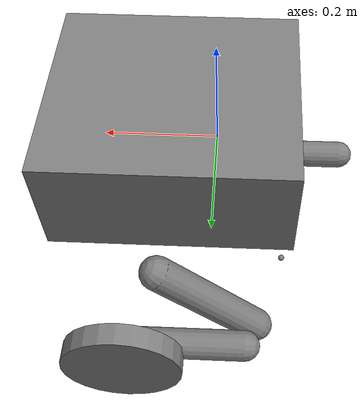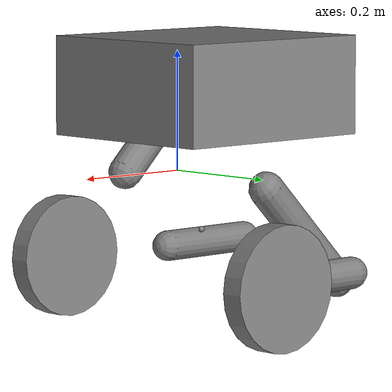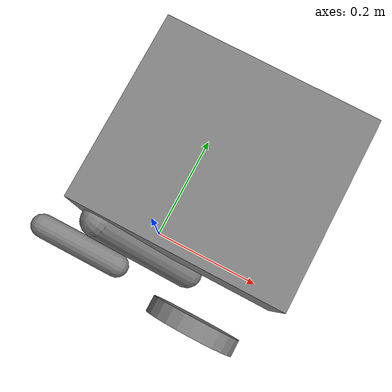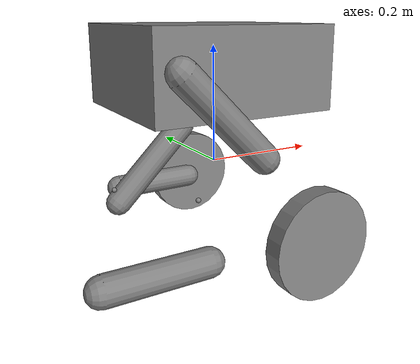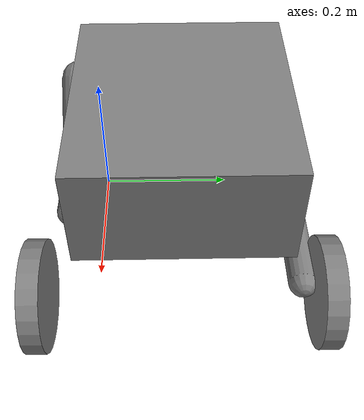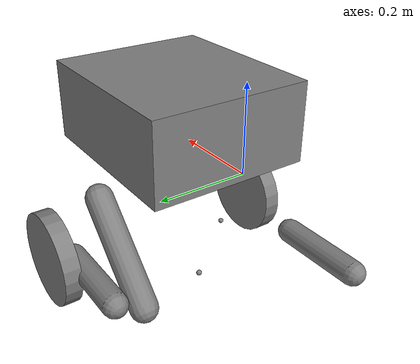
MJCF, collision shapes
<?xml version="1.0" ?>
<mujoco model="hoppertrex">
  <compiler angle="radian" meshdir="." autolimits="true"/>
  <default>
    <default class="visual">
      <geom type="mesh" contype="0" conaffinity="0" group="2"/>
    </default>
    <default class="collision">
      <geom contype="1" conaffinity="1" condim="3" group="3" friction="0.8 0.003 0.0001" solref="0.01 1" solimp="0.9 0.95 0.001"/>
    </default>
    <default class="wheel_collision">
      <geom contype="1" conaffinity="1" condim="6" group="3" friction="1.6 0.02 0.002" solref="0.005 1" solimp="0.95 0.99 0.001"/>
    </default>
  </default>
  <asset>
    <mesh name="chassis_base" content_type="model/stl" file="meshes/chassis_base.stl"/>
    <mesh name="thigh_left" content_type="model/stl" file="meshes/thigh_left.stl"/>
    <mesh name="calf_left" content_type="model/stl" file="meshes/calf_left.stl"/>
    <mesh name="wheel" content_type="model/stl" file="meshes/wheel.stl"/>
    <mesh name="thigh_right" content_type="model/stl" file="meshes/thigh_right.stl"/>
    <mesh name="calf_right" content_type="model/stl" file="meshes/calf_right.stl"/>
  </asset>
  <worldbody>
    <body name="chassis_base">
      <inertial pos="0.055895412145747870591 0.12657096212450411055 0.15318659611809870569" mass="5.8727148917171856368" diaginertia="0.0883099177066 0.14982418413 0.178825897519"/>
      <freejoint name="floating_base_joint"/>
      <geom pos="0.290098 0.108904 -0.0125122" quat="1 0 0 0" type="mesh" rgba="0.74902 0.74902 0.74902 1" mesh="chassis_base" name="chassis_base_visual" class="visual" contype="0" conaffinity="0" group="2"/>
      <body name="thigh_left" pos="0.0804982 0.289876 0" quat="0 0 -0.707107 0.707107">
        <inertial pos="0.0927701 0.0928165 -0.00521573" quat="0.664036 0.266895 -0.642286 0.274394" mass="2.02414" diaginertia="0.0168407 0.0162625 0.00141807"/>
        <joint name="thigh_left_01" pos="0 0 0" axis="0 0 1" actuatorfrcrange="-97 97" range="-2.443 0.698" limited="true"/>
        <geom pos="0 0 -0.000380475" quat="0.707107 0.707107 0 0" type="mesh" rgba="0.74902 0.74902 0.74902 1" mesh="thigh_left" name="thigh_left_visual" class="visual" contype="0" conaffinity="0" group="2"/>
        <body name="calf_left" pos="0.141407 0.141436 -0.05" quat="0.707107 0 0 0.707107">
          <inertial pos="0.000646118 0.162428 -0.019213" quat="0.523795 0.476934 -0.463829 0.532011" mass="1.40106" diaginertia="0.00960709 0.00905314 0.00106096"/>
          <joint name="knee_left" pos="0 0 0" axis="0 0 1" actuatorfrcrange="-97 97" range="-0.698 2.094" limited="true"/>
          <geom pos="0.199726 -0.0104672 0.0376195" quat="0.54853 0.54853 -0.446223 -0.446223" type="mesh" rgba="0.74902 0.74902 0.74902 1" mesh="calf_left" name="calf_left_visual" class="visual" contype="0" conaffinity="0" group="2"/>
          <site name="left_knee_tip" pos="-0.048 -0.059 0.146" size="0.005"/>
          <body name="wheel" pos="0 0.2 -0.04925" quat="0.707107 0 0 -0.707107">
            <inertial pos="0.000105473 -7.52128e-05 0.0138404" quat="0.628379 0.323781 -0.628641 0.324216" mass="2.02299" diaginertia="0.01291 0.00667058 0.0066568"/>
            <joint name="wheel_left" pos="0 0 0" axis="0 0 1" actuatorfrcrange="-5.8 5.8"/>
            <geom pos="0.0168177 0.0487336 0.0549063" quat="0.5 0.5 0.5 -0.5" type="mesh" rgba="0.74902 0.74902 0.74902 1" mesh="wheel" name="wheel_visual" class="visual" contype="0" conaffinity="0" group="2"/>
            <geom name="wheel_left_collision" type="cylinder" pos="0.000105 -0.000075 0.01384" size="0.100 0.018" class="wheel_collision"/>
          </body>
          <geom name="calf_left_collision" type="capsule" fromto="0 0 0 0 0.18 0" size="0.026" class="collision"/>
        </body>
        <geom name="thigh_left_collision" type="capsule" fromto="0 0 0 0.16 0.16 0" size="0.028" class="collision"/>
      </body>
      <body name="thigh_right" pos="0.0804985 -0.040124 0" quat="0 0 0.707107 0.707107">
        <inertial pos="0.0928881 -0.0926983 -0.00521573" quat="0.266486 0.66421 -0.273971 0.642456" mass="2.02414" diaginertia="0.0168407 0.0162625 0.00141807"/>
        <joint name="thigh_right_01" pos="0 0 0" axis="0 0 1" actuatorfrcrange="-97 97" range="-0.698 2.443" limited="true"/>
        <geom pos="0 0 -0.000380475" quat="0.707107 0.707107 0 0" type="mesh" rgba="0.74902 0.74902 0.74902 1" mesh="thigh_right" name="thigh_right_visual" class="visual" contype="0" conaffinity="0" group="2"/>
        <body name="calf_right" pos="0.141586 -0.141256 -0.05" quat="0.707107 0 0 -0.707107">
          <inertial pos="0.000645393 -0.162426 -0.019213" quat="0.476935 0.523803 -0.532007 0.463823" mass="1.40106" diaginertia="0.00960687 0.00905285 0.00106101"/>
          <joint name="knee_right" pos="0 0 0" axis="0 0 1" actuatorfrcrange="-97 97" range="-2.094 0.698" limited="true"/>
          <geom pos="0.2 0 0.0376195" quat="0.548619 0.548619 0.446114 0.446114" type="mesh" rgba="0.74902 0.74902 0.74902 1" mesh="calf_right" name="calf_right_visual" class="visual" contype="0" conaffinity="0" group="2"/>
          <site name="right_knee_tip" pos="-0.048 -0.059 0.146" size="0.005"/>
          <body name="wheel_2" pos="0 -0.2 -0.04925" quat="0.707107 0 0 0.707107">
            <inertial pos="0.000105473 -7.52128e-05 0.0138404" quat="0.628379 0.323781 -0.628641 0.324216" mass="2.02299" diaginertia="0.01291 0.00667058 0.0066568"/>
            <joint name="wheel_right" pos="0 0 0" axis="0 0 1" actuatorfrcrange="-5.8 5.8"/>
            <geom pos="0.0168177 0.0487336 0.0549063" quat="0.5 0.5 0.5 -0.5" type="mesh" rgba="0.74902 0.74902 0.74902 1" mesh="wheel" name="wheel_visual_2" class="visual" contype="0" conaffinity="0" group="2"/>
            <geom name="wheel_right_collision" type="cylinder" pos="0.000105 -0.000075 0.01384" size="0.100 0.018" class="wheel_collision"/>
          </body>
          <geom name="calf_right_collision" type="capsule" fromto="0 0 0 0 0.18 0" size="0.026" class="collision"/>
        </body>
        <geom name="thigh_right_collision" type="capsule" fromto="0 0 0 0.16 0.16 0" size="0.028" class="collision"/>
      </body>
      <geom name="chassis_base_collision" type="box" pos="0.055 0.126 0.153" size="0.18 0.16 0.08" class="collision"/>
    </body>
  </worldbody>
</mujoco>
